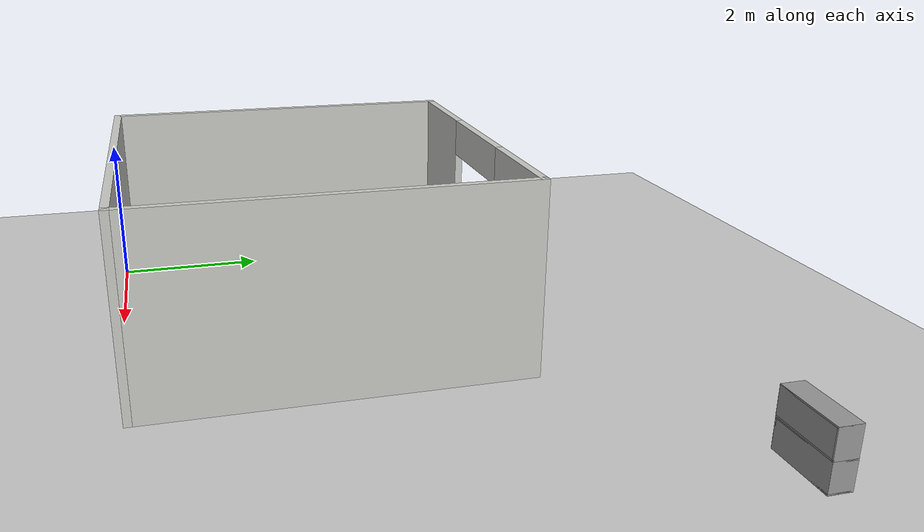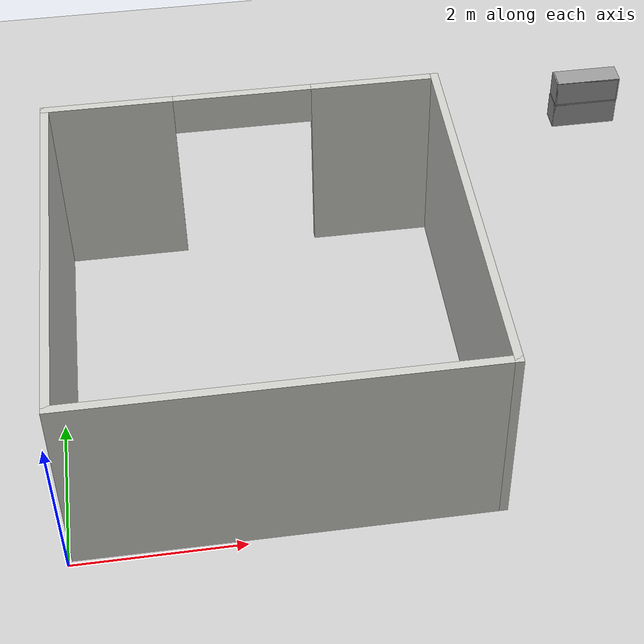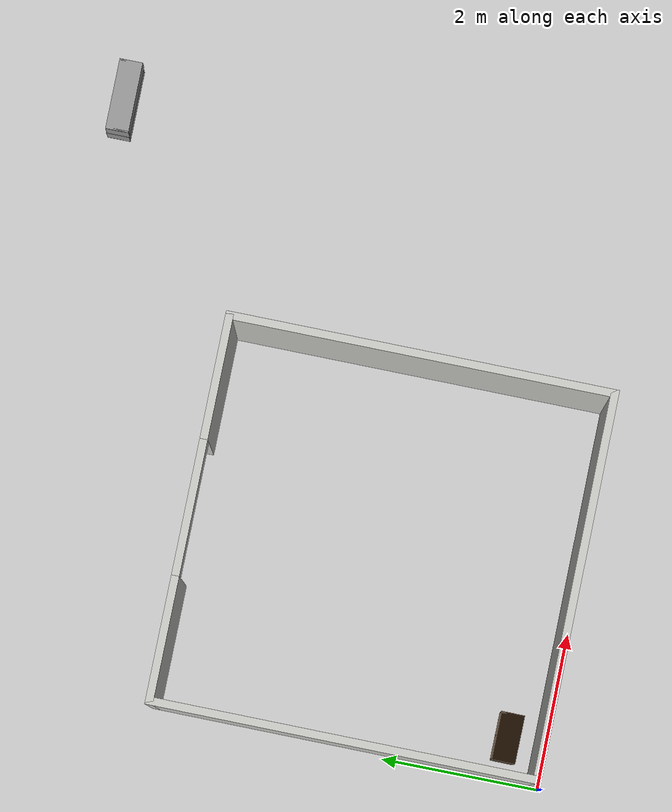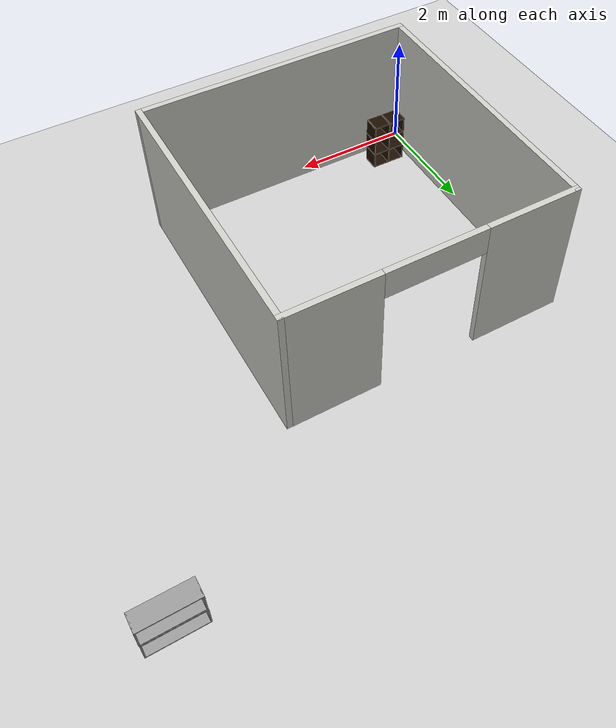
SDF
<sdf version="1.6">
 <world name="default">
  <model name="ground_plane">
   <static>1</static>
   <link name="link">
    <collision name="collision">
     <geometry><plane><normal>0 0 1</normal><size>100 100</size></plane></geometry>
     <surface><friction><ode><mu>100</mu><mu2>50</mu2></ode></friction></surface>
    </collision>
    <visual name="visual">
     <cast_shadows>0</cast_shadows>
     <geometry><plane><normal>0 0 1</normal><size>100 100</size></plane></geometry>
     <material>
      <script><uri>file://media/materials/scripts/gazebo.material</uri><name>Gazebo/Grey</name></script>
     </material>
    </visual>
   </link>
  </model>
  <model name="6_Cube_StorageE">
   <link name="Wall_0">
    <pose>0 0 0.01 0 -0 0</pose>
    <inertial>
     <mass>1.6201</mass>
     <inertia><ixx>0.0119</ixx><iyy>0.0631</iyy><izz>0.0513</izz><ixy>0</ixy><ixz>0</ixz><iyz>0</iyz></inertia>
    </inertial>
    <collision name="Wall_0_Collision"><geometry><box><size>0.616 0.296 0.02</size></box></geometry></collision>
    <visual name="Wall_0_Visual">
     <geometry><box><size>0.616 0.296 0.02</size></box></geometry>
     <material>
      <script><uri>file://media/materials/scripts/gazebo.material</uri><name>Gazebo/Grey</name></script>
      <ambient>0.105882 0.0509804 0 1</ambient>
     </material>
    </visual>
   </link>
   <joint name="0_2" type="fixed">
    <pose>-0.308 0 0 0 -0 0</pose>
    <parent>Wall_2</parent>
    <child>Wall_0</child>
    <axis>
     <xyz>1 0 0</xyz>
     <use_parent_model_frame>0</use_parent_model_frame>
     <limit><lower>-1e+16</lower><upper>1e+16</upper></limit>
    </axis>
   </joint>
   <joint name="0_12" type="fixed">
    <parent>Wall_12</parent>
    <child>Wall_0</child>
    <axis>
     <xyz>0 0 1</xyz>
     <use_parent_model_frame>0</use_parent_model_frame>
     <limit><lower>-1e+16</lower><upper>1e+16</upper></limit>
    </axis>
   </joint>
   <joint name="0_4" type="fixed">
    <pose>0.308 0 0 0 -0 0</pose>
    <parent>Wall_4</parent>
    <child>Wall_0</child>
    <axis>
     <xyz>1 0 0</xyz>
     <use_parent_model_frame>0</use_parent_model_frame>
     <limit><lower>-1e+16</lower><upper>1e+16</upper></limit>
    </axis>
   </joint>
   <link name="Wall_10">
    <pose>0 0 0.61 0 -0 0</pose>
    <inertial>
     <mass>1.6201</mass>
     <inertia><ixx>0.0119</ixx><iyy>0.0631</iyy><izz>0.0513</izz><ixy>0</ixy><ixz>0</ixz><iyz>0</iyz></inertia>
    </inertial>
    <collision name="Wall_10_Collision"><geometry><box><size>0.616 0.296 0.02</size></box></geometry></collision>
    <visual name="Wall_10_Visual">
     <geometry><box><size>0.616 0.296 0.02</size></box></geometry>
     <material>
      <script><uri>file://media/materials/scripts/gazebo.material</uri><name>Gazebo/Grey</name></script>
      <ambient>0.105882 0.0509804 0 1</ambient>
     </material>
    </visual>
   </link>
   <joint name="10_2" type="fixed">
    <pose>-0.308 0 0 0 -0 0</pose>
    <parent>Wall_2</parent>
    <child>Wall_10</child>
    <axis>
     <xyz>1 0 0</xyz>
     <use_parent_model_frame>0</use_parent_model_frame>
     <limit><lower>-1e+16</lower><upper>1e+16</upper></limit>
    </axis>
   </joint>
   <joint name="10_12" type="fixed">
    <parent>Wall_12</parent>
    <child>Wall_10</child>
    <axis>
     <xyz>0 0 1</xyz>
     <use_parent_model_frame>0</use_parent_model_frame>
     <limit><lower>-1e+16</lower><upper>1e+16</upper></limit>
    </axis>
   </joint>
   <joint name="10_4" type="fixed">
    <pose>0.308 0 0 0 -0 0</pose>
    <parent>Wall_4</parent>
    <child>Wall_10</child>
    <axis>
     <xyz>1 0 0</xyz>
     <use_parent_model_frame>0</use_parent_model_frame>
     <limit><lower>-1e+16</lower><upper>1e+16</upper></limit>
    </axis>
   </joint>
   <link name="Wall_12">
    <pose>0 0 0.4575 0 -0 0</pose>
    <inertial>
     <mass>2.4065</mass>
     <inertia><ixx>0.0177</ixx><iyy>0.1855</iyy><izz>0.168</izz><ixy>0</ixy><ixz>0</ixz><iyz>0</iyz></inertia>
    </inertial>
    <collision name="Wall_12_Collision"><geometry><box><size>0.02 0.296 0.915</size></box></geometry></collision>
    <visual name="Wall_12_Visual">
     <geometry><box><size>0.02 0.296 0.915</size></box></geometry>
     <material>
      <script><uri>file://media/materials/scripts/gazebo.material</uri><name>Gazebo/Grey</name></script>
      <ambient>0.105882 0.0509804 0 1</ambient>
     </material>
    </visual>
   </link>
   <link name="Wall_2">
    <pose>-0.298 0 0.4575 0 -0 0</pose>
    <inertial>
     <mass>2.4065</mass>
     <inertia><ixx>0.0177</ixx><iyy>0.1855</iyy><izz>0.168</izz><ixy>0</ixy><ixz>0</ixz><iyz>0</iyz></inertia>
    </inertial>
    <collision name="Wall_2_Collision"><geometry><box><size>0.02 0.296 0.915</size></box></geometry></collision>
    <visual name="Wall_2_Visual">
     <geometry><box><size>0.02 0.296 0.915</size></box></geometry>
     <material>
      <script><uri>file://media/materials/scripts/gazebo.material</uri><name>Gazebo/Grey</name></script>
      <ambient>0.105882 0.0509804 0 1</ambient>
     </material>
    </visual>
   </link>
   <link name="Wall_4">
    <pose>0.298 0 0.4575 0 -0 0</pose>
    <inertial>
     <mass>2.4065</mass>
     <inertia><ixx>0.0177</ixx><iyy>0.1855</iyy><izz>0.168</izz><ixy>0</ixy><ixz>0</ixz><iyz>0</iyz></inertia>
    </inertial>
    <collision name="Wall_4_Collision"><geometry><box><size>0.02 0.296 0.915</size></box></geometry></collision>
    <visual name="Wall_4_Visual">
     <geometry><box><size>0.02 0.296 0.915</size></box></geometry>
     <material>
      <script><uri>file://media/materials/scripts/gazebo.material</uri><name>Gazebo/Grey</name></script>
      <ambient>0.105882 0.0509804 0 1</ambient>
     </material>
    </visual>
   </link>
   <link name="Wall_6">
    <pose>0 0 0.905 0 -0 0</pose>
    <inertial>
     <mass>1.6201</mass>
     <inertia><ixx>0.0119</ixx><iyy>0.0631</iyy><izz>0.0513</izz><ixy>0</ixy><ixz>0</ixz><iyz>0</iyz></inertia>
    </inertial>
    <collision name="Wall_6_Collision"><geometry><box><size>0.616 0.296 0.02</size></box></geometry></collision>
    <visual name="Wall_6_Visual">
     <geometry><box><size>0.616 0.296 0.02</size></box></geometry>
     <material>
      <script><uri>file://media/materials/scripts/gazebo.material</uri><name>Gazebo/Grey</name></script>
      <ambient>0.105882 0.0509804 0 1</ambient>
     </material>
    </visual>
   </link>
   <joint name="6_2" type="fixed">
    <pose>-0.308 0 0 0 -0 0</pose>
    <parent>Wall_2</parent>
    <child>Wall_6</child>
    <axis>
     <xyz>2 0 0</xyz>
     <use_parent_model_frame>0</use_parent_model_frame>
     <limit><lower>-1e+16</lower><upper>1e+16</upper></limit>
    </axis>
   </joint>
   <joint name="6_12" type="fixed">
    <parent>Wall_12</parent>
    <child>Wall_6</child>
    <axis>
     <xyz>0 0 1</xyz>
     <use_parent_model_frame>0</use_parent_model_frame>
     <limit><lower>-1e+16</lower><upper>1e+16</upper></limit>
    </axis>
   </joint>
   <joint name="6_4" type="fixed">
    <pose>0.308 0 0 0 -0 0</pose>
    <parent>Wall_4</parent>
    <child>Wall_6</child>
    <axis>
     <xyz>1 0 0</xyz>
     <use_parent_model_frame>0</use_parent_model_frame>
     <limit><lower>-1e+16</lower><upper>1e+16</upper></limit>
    </axis>
   </joint>
   <link name="Wall_8">
    <pose>0 0 0.305 0 -0 0</pose>
    <inertial>
     <mass>1.6201</mass>
     <inertia><ixx>0.0119</ixx><iyy>0.0631</iyy><izz>0.0513</izz><ixy>0</ixy><ixz>0</ixz><iyz>0</iyz></inertia>
    </inertial>
    <collision name="Wall_8_Collision"><geometry><box><size>0.616 0.296 0.02</size></box></geometry></collision>
    <visual name="Wall_8_Visual">
     <geometry><box><size>0.616 0.296 0.02</size></box></geometry>
     <material>
      <script><uri>file://media/materials/scripts/gazebo.material</uri><name>Gazebo/Grey</name></script>
      <ambient>0.105882 0.0509804 0 1</ambient>
     </material>
    </visual>
   </link>
   <joint name="8_2" type="fixed">
    <pose>-0.308 0 0 0 -0 0</pose>
    <parent>Wall_2</parent>
    <child>Wall_8</child>
    <axis>
     <xyz>1 0 0</xyz>
     <use_parent_model_frame>0</use_parent_model_frame>
     <limit><lower>-1e+16</lower><upper>1e+16</upper></limit>
    </axis>
   </joint>
   <joint name="8_12" type="fixed">
    <parent>Wall_12</parent>
    <child>Wall_8</child>
    <axis>
     <xyz>0 0 1</xyz>
     <use_parent_model_frame>0</use_parent_model_frame>
     <limit><lower>-1e+16</lower><upper>1e+16</upper></limit>
    </axis>
   </joint>
   <joint name="8_4" type="fixed">
    <pose>0.308 0 0 0 -0 0</pose>
    <parent>Wall_4</parent>
    <child>Wall_8</child>
    <axis>
     <xyz>1 0 0</xyz>
     <use_parent_model_frame>0</use_parent_model_frame>
     <limit><lower>-1e+16</lower><upper>1e+16</upper></limit>
    </axis>
   </joint>
   <static>1</static>
   <pose>0.564082 0.506841 0 0 -0 3.13237</pose>
  </model>
  <model name="Wall_Cabinet_36x15W">
   <link name="Wall_0">
    <pose>0 0 0.01 0 -0 0</pose>
    <inertial>
     <mass>1.9796</mass>
     <inertia><ixx>0.0145</ixx><iyy>0.1511</iyy><izz>0.1367</izz><ixy>0</ixy><ixz>0</ixz><iyz>0</iyz></inertia>
    </inertial>
    <collision name="Wall_0_Collision"><geometry><box><size>0.91 0.296 0.02</size></box></geometry></collision>
    <visual name="Wall_0_Visual">
     <geometry><box><size>0.91 0.296 0.02</size></box></geometry>
     <material>
      <script><uri>file://media/materials/scripts/gazebo.material</uri><name>Gazebo/Grey</name></script>
      <ambient>1 1 1 1</ambient>
     </material>
    </visual>
   </link>
   <joint name="0_2" type="fixed">
    <pose>-0.455 0 0 0 -0 0</pose>
    <parent>Wall_2</parent>
    <child>Wall_0</child>
    <axis>
     <xyz>0 0 1</xyz>
     <use_parent_model_frame>0</use_parent_model_frame>
     <limit><lower>-1e+16</lower><upper>1e+16</upper></limit>
    </axis>
   </joint>
   <joint name="0_4" type="fixed">
    <pose>0.455 0 0 0 -0 0</pose>
    <parent>Wall_4</parent>
    <child>Wall_0</child>
    <axis>
     <xyz>0 0 1</xyz>
     <use_parent_model_frame>0</use_parent_model_frame>
     <limit><lower>-1e+16</lower><upper>1e+16</upper></limit>
    </axis>
   </joint>
   <joint name="0_8" type="fixed">
    <pose>0 -0.148 0 0 -0 0</pose>
    <parent>Wall_8</parent>
    <child>Wall_0</child>
    <axis>
     <xyz>0 0 1</xyz>
     <use_parent_model_frame>0</use_parent_model_frame>
     <limit><lower>-1e+16</lower><upper>1e+16</upper></limit>
    </axis>
   </joint>
   <link name="Wall_2">
    <pose>-0.445 0 0.192 0 -0 0</pose>
    <inertial>
     <mass>0.8353</mass>
     <inertia><ixx>0.0061</ixx><iyy>0.0164</iyy><izz>0.0103</izz><ixy>0</ixy><ixz>0</ixz><iyz>0</iyz></inertia>
    </inertial>
    <collision name="Wall_2_Collision"><geometry><box><size>0.02 0.296 0.384</size></box></geometry></collision>
    <visual name="Wall_2_Visual">
     <geometry><box><size>0.02 0.296 0.384</size></box></geometry>
     <material>
      <script><uri>file://media/materials/scripts/gazebo.material</uri><name>Gazebo/Grey</name></script>
      <ambient>1 1 1 1</ambient>
     </material>
    </visual>
   </link>
   <link name="Wall_4">
    <pose>0.445 0 0.192 0 -0 0</pose>
    <inertial>
     <mass>0.8353</mass>
     <inertia><ixx>0.0061</ixx><iyy>0.0164</iyy><izz>0.0103</izz><ixy>0</ixy><ixz>0</ixz><iyz>0</iyz></inertia>
    </inertial>
    <collision name="Wall_4_Collision"><geometry><box><size>0.02 0.296 0.384</size></box></geometry></collision>
    <visual name="Wall_4_Visual">
     <geometry><box><size>0.02 0.296 0.384</size></box></geometry>
     <material>
      <script><uri>file://media/materials/scripts/gazebo.material</uri><name>Gazebo/Grey</name></script>
      <ambient>1 1 1 1</ambient>
     </material>
    </visual>
   </link>
   <link name="Wall_6">
    <pose>0 0 0.374 0 -0 0</pose>
    <inertial>
     <mass>1.9796</mass>
     <inertia><ixx>0.0145</ixx><iyy>0.1511</iyy><izz>0.1367</izz><ixy>0</ixy><ixz>0</ixz><iyz>0</iyz></inertia>
    </inertial>
    <collision name="Wall_6_Collision"><geometry><box><size>0.91 0.296 0.02</size></box></geometry></collision>
    <visual name="Wall_6_Visual">
     <geometry><box><size>0.91 0.296 0.02</size></box></geometry>
     <material>
      <script><uri>file://media/materials/scripts/gazebo.material</uri><name>Gazebo/Grey</name></script>
      <ambient>1 1 1 1</ambient>
     </material>
    </visual>
   </link>
   <joint name="6_2" type="fixed">
    <pose>-0.455 0 0 0 -0 0</pose>
    <parent>Wall_2</parent>
    <child>Wall_6</child>
    <axis>
     <xyz>0 0 1</xyz>
     <use_parent_model_frame>0</use_parent_model_frame>
     <limit><lower>-1e+16</lower><upper>1e+16</upper></limit>
    </axis>
   </joint>
   <joint name="6_4" type="fixed">
    <pose>0.455 0 0 0 -0 0</pose>
    <parent>Wall_4</parent>
    <child>Wall_6</child>
    <axis>
     <xyz>0 0 1</xyz>
     <use_parent_model_frame>0</use_parent_model_frame>
     <limit><lower>-1e+16</lower><upper>1e+16</upper></limit>
    </axis>
   </joint>
   <joint name="6_8" type="fixed">
    <pose>0 -0.148 0 0 -0 0</pose>
    <parent>Wall_8</parent>
    <child>Wall_6</child>
    <axis>
     <xyz>0 0 1</xyz>
     <use_parent_model_frame>0</use_parent_model_frame>
     <limit><lower>-1e+16</lower><upper>1e+16</upper></limit>
    </axis>
   </joint>
   <link name="Wall_8">
    <pose>0 -0.138 0.19 0 -0 0</pose>
    <inertial>
     <mass>2.5302</mass>
     <inertia><ixx>0.0305</ixx><iyy>0.1732</iyy><izz>0.2035</izz><ixy>0</ixy><ixz>0</ixz><iyz>0</iyz></inertia>
    </inertial>
    <collision name="Wall_8_Collision"><geometry><box><size>0.906 0.02 0.38</size></box></geometry></collision>
    <visual name="Wall_8_Visual">
     <geometry><box><size>0.906 0.02 0.38</size></box></geometry>
     <material>
      <script><uri>file://media/materials/scripts/gazebo.material</uri><name>Gazebo/Grey</name></script>
      <ambient>1 1 1 1</ambient>
     </material>
    </visual>
   </link>
   <joint name="8_2" type="fixed">
    <pose>-0.453 0 0 0 -0 0</pose>
    <parent>Wall_2</parent>
    <child>Wall_8</child>
    <axis>
     <xyz>0 1 0</xyz>
     <use_parent_model_frame>0</use_parent_model_frame>
     <limit><lower>-1e+16</lower><upper>1e+16</upper></limit>
    </axis>
   </joint>
   <joint name="8_4" type="fixed">
    <pose>0.453 0 0 0 -0 0</pose>
    <parent>Wall_4</parent>
    <child>Wall_8</child>
    <axis>
     <xyz>0 1 0</xyz>
     <use_parent_model_frame>0</use_parent_model_frame>
     <limit><lower>-1e+16</lower><upper>1e+16</upper></limit>
    </axis>
   </joint>
   <static>1</static>
   <pose>7.53619 6.84002 0 0 -0 0</pose>
  </model>
  <model name="Wall_Cabinet_36x15W_4">
   <link name="Wall_0">
    <pose>0 0 0.01 0 -0 0</pose>
    <inertial>
     <mass>1.9796</mass>
     <inertia><ixx>0.0145</ixx><iyy>0.1511</iyy><izz>0.1367</izz><ixy>0</ixy><ixz>0</ixz><iyz>0</iyz></inertia>
    </inertial>
    <collision name="Wall_0_Collision"><geometry><box><size>0.91 0.296 0.02</size></box></geometry></collision>
    <visual name="Wall_0_Visual">
     <geometry><box><size>0.91 0.296 0.02</size></box></geometry>
     <material>
      <script><uri>file://media/materials/scripts/gazebo.material</uri><name>Gazebo/Grey</name></script>
      <ambient>1 1 1 1</ambient>
     </material>
    </visual>
   </link>
   <joint name="0_2" type="fixed">
    <pose>-0.455 0 0 0 -0 0</pose>
    <parent>Wall_2</parent>
    <child>Wall_0</child>
    <axis>
     <xyz>0 0 1</xyz>
     <use_parent_model_frame>0</use_parent_model_frame>
     <limit><lower>-1e+16</lower><upper>1e+16</upper></limit>
    </axis>
   </joint>
   <joint name="0_4" type="fixed">
    <pose>0.455 0 0 0 -0 0</pose>
    <parent>Wall_4</parent>
    <child>Wall_0</child>
    <axis>
     <xyz>0 0 1</xyz>
     <use_parent_model_frame>0</use_parent_model_frame>
     <limit><lower>-1e+16</lower><upper>1e+16</upper></limit>
    </axis>
   </joint>
   <joint name="0_8" type="fixed">
    <pose>0 -0.148 0 0 -0 0</pose>
    <parent>Wall_8</parent>
    <child>Wall_0</child>
    <axis>
     <xyz>0 0 1</xyz>
     <use_parent_model_frame>0</use_parent_model_frame>
     <limit><lower>-1e+16</lower><upper>1e+16</upper></limit>
    </axis>
   </joint>
   <link name="Wall_2">
    <pose>-0.445 0 0.192 0 -0 0</pose>
    <inertial>
     <mass>0.8353</mass>
     <inertia><ixx>0.0061</ixx><iyy>0.0164</iyy><izz>0.0103</izz><ixy>0</ixy><ixz>0</ixz><iyz>0</iyz></inertia>
    </inertial>
    <collision name="Wall_2_Collision"><geometry><box><size>0.02 0.296 0.384</size></box></geometry></collision>
    <visual name="Wall_2_Visual">
     <geometry><box><size>0.02 0.296 0.384</size></box></geometry>
     <material>
      <script><uri>file://media/materials/scripts/gazebo.material</uri><name>Gazebo/Grey</name></script>
      <ambient>1 1 1 1</ambient>
     </material>
    </visual>
   </link>
   <link name="Wall_4">
    <pose>0.445 0 0.192 0 -0 0</pose>
    <inertial>
     <mass>0.8353</mass>
     <inertia><ixx>0.0061</ixx><iyy>0.0164</iyy><izz>0.0103</izz><ixy>0</ixy><ixz>0</ixz><iyz>0</iyz></inertia>
    </inertial>
    <collision name="Wall_4_Collision"><geometry><box><size>0.02 0.296 0.384</size></box></geometry></collision>
    <visual name="Wall_4_Visual">
     <geometry><box><size>0.02 0.296 0.384</size></box></geometry>
     <material>
      <script><uri>file://media/materials/scripts/gazebo.material</uri><name>Gazebo/Grey</name></script>
      <ambient>1 1 1 1</ambient>
     </material>
    </visual>
   </link>
   <link name="Wall_6">
    <pose>0 0 0.374 0 -0 0</pose>
    <inertial>
     <mass>1.9796</mass>
     <inertia><ixx>0.0145</ixx><iyy>0.1511</iyy><izz>0.1367</izz><ixy>0</ixy><ixz>0</ixz><iyz>0</iyz></inertia>
    </inertial>
    <collision name="Wall_6_Collision"><geometry><box><size>0.91 0.296 0.02</size></box></geometry></collision>
    <visual name="Wall_6_Visual">
     <geometry><box><size>0.91 0.296 0.02</size></box></geometry>
     <material>
      <script><uri>file://media/materials/scripts/gazebo.material</uri><name>Gazebo/Grey</name></script>
      <ambient>1 1 1 1</ambient>
     </material>
    </visual>
   </link>
   <joint name="6_2" type="fixed">
    <pose>-0.455 0 0 0 -0 0</pose>
    <parent>Wall_2</parent>
    <child>Wall_6</child>
    <axis>
     <xyz>0 0 1</xyz>
     <use_parent_model_frame>0</use_parent_model_frame>
     <limit><lower>-1e+16</lower><upper>1e+16</upper></limit>
    </axis>
   </joint>
   <joint name="6_4" type="fixed">
    <pose>0.455 0 0 0 -0 0</pose>
    <parent>Wall_4</parent>
    <child>Wall_6</child>
    <axis>
     <xyz>0 0 1</xyz>
     <use_parent_model_frame>0</use_parent_model_frame>
     <limit><lower>-1e+16</lower><upper>1e+16</upper></limit>
    </axis>
   </joint>
   <joint name="6_8" type="fixed">
    <pose>0 -0.148 0 0 -0 0</pose>
    <parent>Wall_8</parent>
    <child>Wall_6</child>
    <axis>
     <xyz>0 0 1</xyz>
     <use_parent_model_frame>0</use_parent_model_frame>
     <limit><lower>-1e+16</lower><upper>1e+16</upper></limit>
    </axis>
   </joint>
   <link name="Wall_8">
    <pose>0 -0.138 0.19 0 -0 0</pose>
    <inertial>
     <mass>2.5302</mass>
     <inertia><ixx>0.0305</ixx><iyy>0.1732</iyy><izz>0.2035</izz><ixy>0</ixy><ixz>0</ixz><iyz>0</iyz></inertia>
    </inertial>
    <collision name="Wall_8_Collision"><geometry><box><size>0.906 0.02 0.38</size></box></geometry></collision>
    <visual name="Wall_8_Visual">
     <geometry><box><size>0.906 0.02 0.38</size></box></geometry>
     <material>
      <script><uri>file://media/materials/scripts/gazebo.material</uri><name>Gazebo/Grey</name></script>
      <ambient>1 1 1 1</ambient>
     </material>
    </visual>
   </link>
   <joint name="8_2" type="fixed">
    <pose>-0.453 0 0 0 -0 0</pose>
    <parent>Wall_2</parent>
    <child>Wall_8</child>
    <axis>
     <xyz>0 1 0</xyz>
     <use_parent_model_frame>0</use_parent_model_frame>
     <limit><lower>-1e+16</lower><upper>1e+16</upper></limit>
    </axis>
   </joint>
   <joint name="8_4" type="fixed">
    <pose>0.453 0 0 0 -0 0</pose>
    <parent>Wall_4</parent>
    <child>Wall_8</child>
    <axis>
     <xyz>0 1 0</xyz>
     <use_parent_model_frame>0</use_parent_model_frame>
     <limit><lower>-1e+16</lower><upper>1e+16</upper></limit>
    </axis>
   </joint>
   <static>1</static>
   <pose>7.5418 6.83293 0.384592 0 -0 0</pose>
  </model>
  <model name="room_wall_2">
   <pose>2.5 2.5 0 0 -0 1.56782</pose>
   <link name="Wall_21">
    <collision name="Wall_21_Collision">
     <geometry><box><size>4.9 0.1 2.5</size></box></geometry>
     <pose>0 0 1.25 0 -0 0</pose>
    </collision>
    <visual name="Wall_21_Visual">
     <pose>0 0 1.25 0 -0 0</pose>
     <geometry><box><size>4.9 0.1 2.5</size></box></geometry>
     <material>
      <script><uri>file://media/materials/scripts/gazebo.material</uri><name>Gazebo/CeilingTiled</name></script>
      <ambient>1 0.764706 0.305882 1</ambient>
     </material>
     <meta><layer>0</layer></meta>
    </visual>
    <pose>0 2.4 0 0 -0 0</pose>
   </link>
   <link name="Wall_22">
    <pose>2.4 0 0 0 0 -1.5708</pose>
    <visual name="Wall_22_Visual_0">
     <pose>-1.64961 0 1.25 0 -0 0</pose>
     <geometry><box><size>1.60079 0.1 2.5</size></box></geometry>
     <material>
      <script><uri>file://media/materials/scripts/gazebo.material</uri><name>Gazebo/CeilingTiled</name></script>
      <ambient>1 0.764706 0.305882 1</ambient>
     </material>
     <meta><layer>0</layer></meta>
    </visual>
    <collision name="Wall_22_Collision_0">
     <geometry><box><size>1.60079 0.1 2.5</size></box></geometry>
     <pose>-1.64961 0 1.25 0 -0 0</pose>
    </collision>
    <visual name="Wall_22_Visual_1">
     <pose>1.65039 0 1.25 0 -0 0</pose>
     <geometry><box><size>1.59921 0.1 2.5</size></box></geometry>
     <material>
      <script><uri>file://media/materials/scripts/gazebo.material</uri><name>Gazebo/CeilingTiled</name></script>
      <ambient>1 0.764706 0.305882 1</ambient>
     </material>
     <meta><layer>0</layer></meta>
    </visual>
    <collision name="Wall_22_Collision_1">
     <geometry><box><size>1.59921 0.1 2.5</size></box></geometry>
     <pose>1.65039 0 1.25 0 -0 0</pose>
    </collision>
    <visual name="Wall_22_Visual_2">
     <pose>0.000786 0 2.25 0 -0 0</pose>
     <geometry><box><size>1.7 0.1 0.5</size></box></geometry>
     <material>
      <script><uri>file://media/materials/scripts/gazebo.material</uri><name>Gazebo/CeilingTiled</name></script>
      <ambient>1 0.764706 0.305882 1</ambient>
     </material>
     <meta><layer>0</layer></meta>
    </visual>
    <collision name="Wall_22_Collision_2">
     <geometry><box><size>1.7 0.1 0.5</size></box></geometry>
     <pose>0.000786 0 2.25 0 -0 0</pose>
    </collision>
   </link>
   <link name="Wall_23">
    <collision name="Wall_23_Collision">
     <geometry><box><size>4.9 0.1 2.5</size></box></geometry>
     <pose>0 0 1.25 0 -0 0</pose>
    </collision>
    <visual name="Wall_23_Visual">
     <pose>0 0 1.25 0 -0 0</pose>
     <geometry><box><size>4.9 0.1 2.5</size></box></geometry>
     <material>
      <script><uri>file://media/materials/scripts/gazebo.material</uri><name>Gazebo/CeilingTiled</name></script>
      <ambient>1 0.764706 0.305882 1</ambient>
     </material>
     <meta><layer>0</layer></meta>
    </visual>
    <pose>0 -2.4 0 0 -0 3.14159</pose>
   </link>
   <link name="Wall_24">
    <collision name="Wall_24_Collision">
     <geometry><box><size>4.9 0.1 2.5</size></box></geometry>
     <pose>0 0 1.25 0 -0 0</pose>
    </collision>
    <visual name="Wall_24_Visual">
     <pose>0 0 1.25 0 -0 0</pose>
     <geometry><box><size>4.9 0.1 2.5</size></box></geometry>
     <material>
      <script><uri>file://media/materials/scripts/gazebo.material</uri><name>Gazebo/CeilingTiled</name></script>
      <ambient>1 0.764706 0.305882 1</ambient>
     </material>
     <meta><layer>0</layer></meta>
    </visual>
    <pose>-2.4 0 0 0 -0 1.5708</pose>
   </link>
   <static>1</static>
  </model>
 </world>
</sdf>
